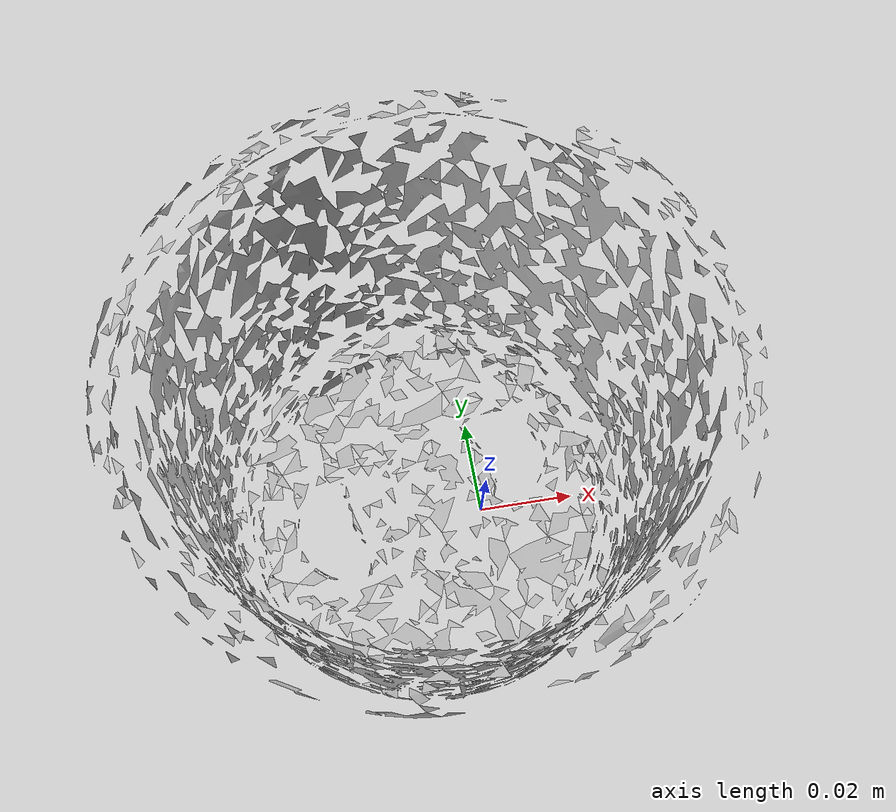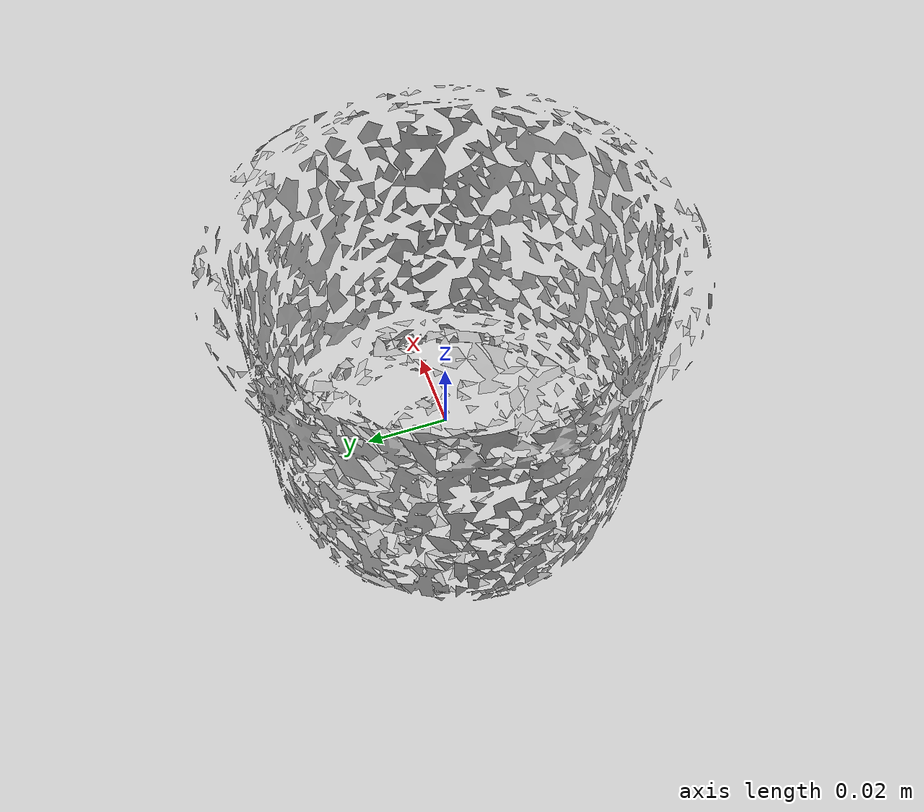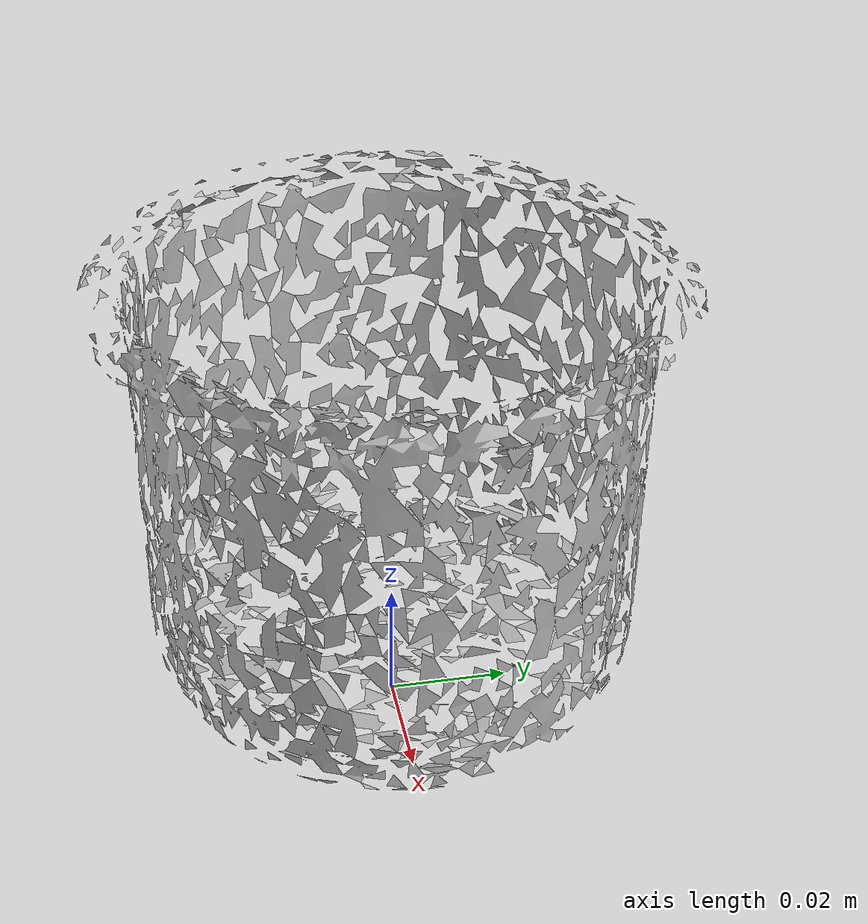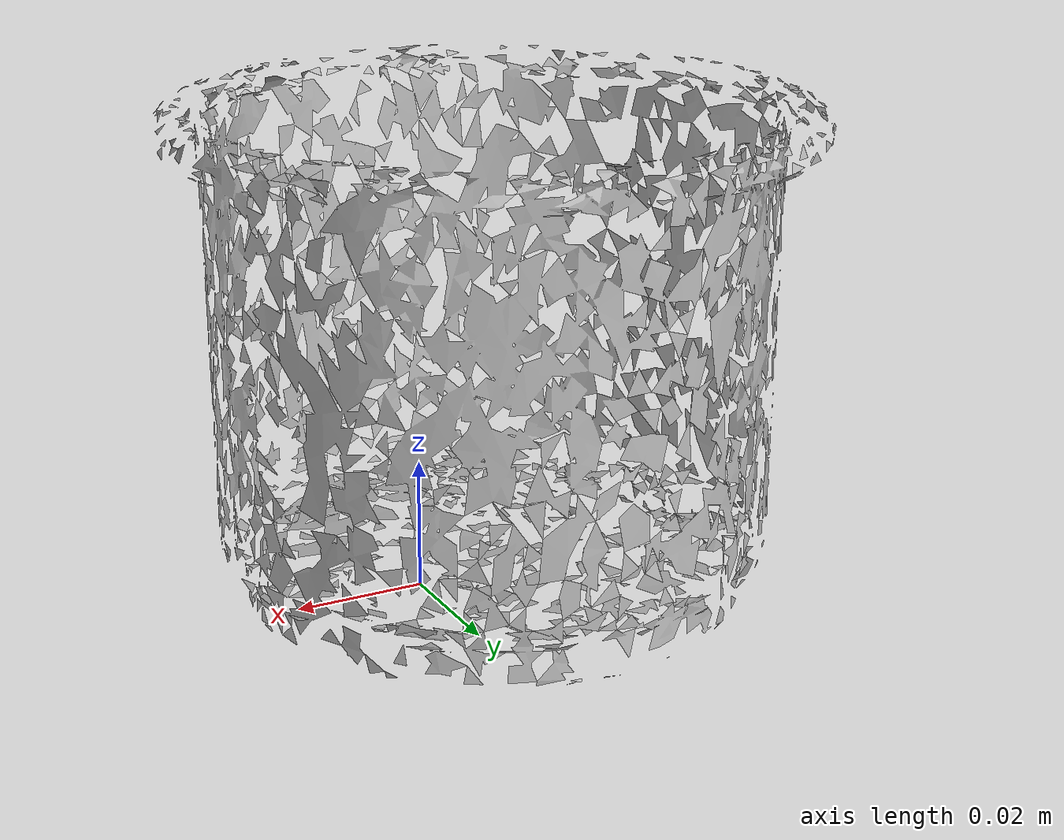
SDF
<?xml version='1.0'?>
<sdf version="1.4">
  <model name="i_cups">
    <static>false</static>
    <link name="link">
      <inertial>
        <pose>-0.010981968779668252 0.0023034321827084393 0.03669757456242688 3.0027087323691295 -1.5636313733304967 1.3242445417895559</pose>
        <mass>4.956830993945483e-05</mass>
        <inertia>
          <ixx>7.783022606444996e-08</ixx>
          <ixy>1.380604573459302e-24</ixy>
          <ixz>-1.700469013570775e-24</ixz>
          <iyy>6.918640873969704e-08</iyy>
          <iyz>-1.746745896279749e-24</iyz>
          <izz>6.88916519586258e-08</izz>
        </inertia>
      </inertial>
      <collision name="collision">
        <geometry>
          <mesh>
            <!-- Use a downsampled mesh for collisions -->
            <uri>model://065-i_cups/downsampled.obj</uri>
	        </mesh>
        </geometry>
        <surface>
      </surface>
      </collision>
      <visual name="visual">
        <geometry>
          <mesh>
            <uri>model://065-i_cups/google_16k/textured.obj</uri>
	        </mesh>
        </geometry>
        <material>
          <script>
            <uri>model://065-i_cups/i_cups.material</uri>
            <name>i_cups</name>
          </script>
        </material>
      </visual>
    </link>
  </model>
</sdf>
